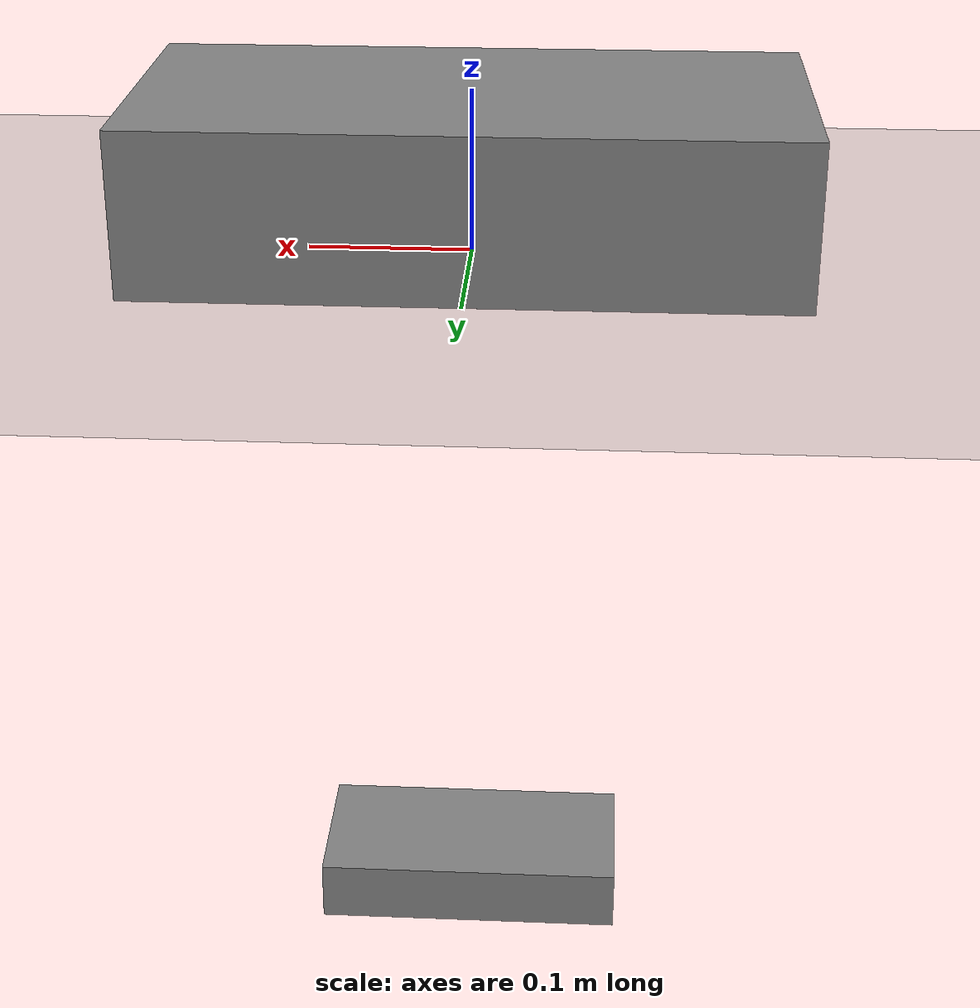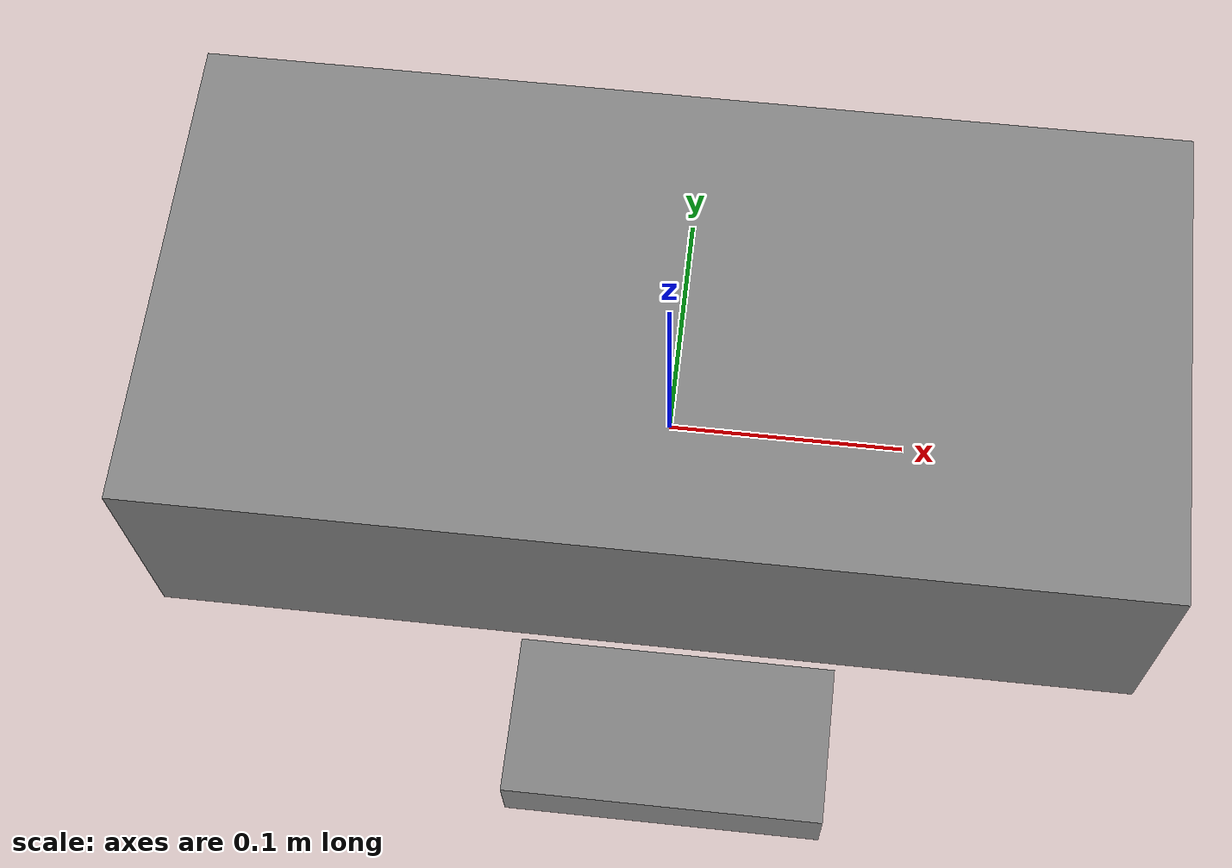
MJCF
<mujoco model="falling_robot">
  <option timestep="0.002" gravity="0 0 -9.81"/>
  <worldbody>
    <geom name="floor" type="plane" size="5 5 0.1"/>
    <body name="torso" pos="0 0 0.05">
      <joint name="torso_free" type="free"/>
      <geom name="torso_geom" type="box" size="0.2 0.1 0.05" mass="5.0"/>
      <body name="left_ankle_roll_link" pos="0 0 -0.5">
        <joint name="foot_hinge" type="hinge" axis="0 1 0"/>
        <geom name="foot_geom" type="box" size="0.1 0.05 0.02" mass="0.5"/>
      </body>
    </body>
  </worldbody>
</mujoco>
